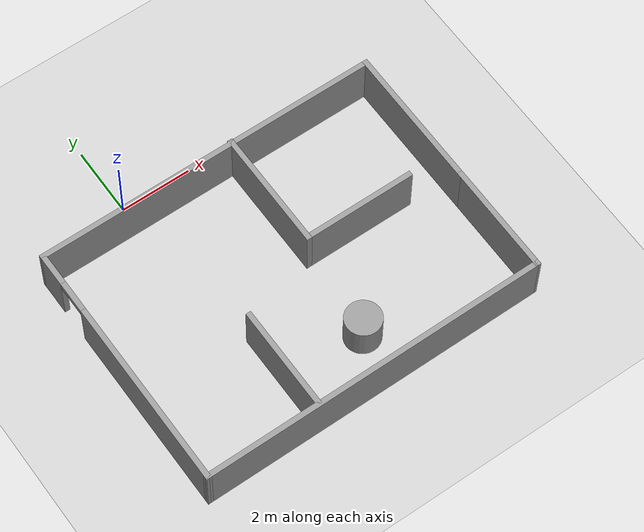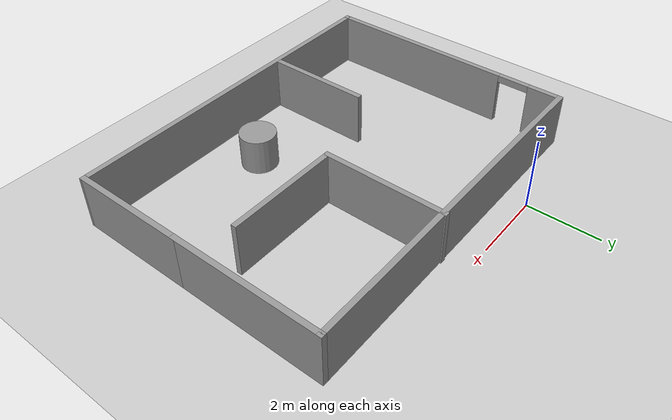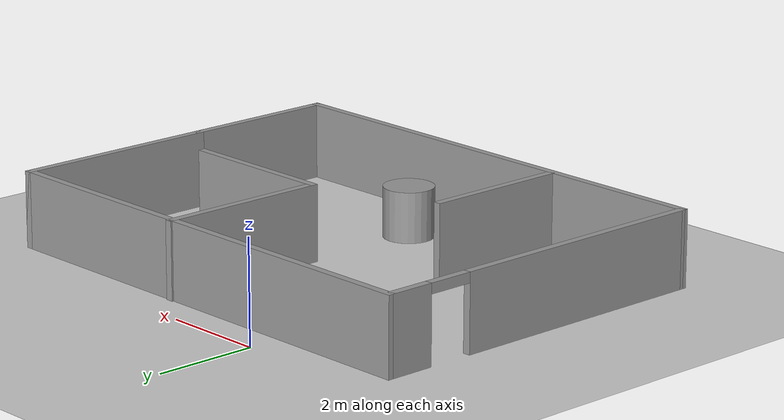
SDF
<sdf version="1.7">
 <world name="default">
  <light name="sun" type="directional">
   <pose>0 0 10 0 -0 0</pose>
   <diffuse>0.8 0.8 0.8 1</diffuse>
   <specular>0.2 0.2 0.2 1</specular>
   <attenuation>
    <range>1000</range>
    <constant>0.9</constant>
    <linear>0.01</linear>
    <quadratic>0.001</quadratic>
   </attenuation>
   <direction>-0.5 0.1 -0.9</direction>
   <spot><inner_angle>0</inner_angle><outer_angle>0</outer_angle><falloff>0</falloff></spot>
  </light>
  <model name="ground_plane">
   <static>1</static>
   <link name="link">
    <collision name="collision">
     <geometry><plane><normal>0 0 1</normal><size>100 100</size></plane></geometry>
     <surface><friction><ode><mu>100</mu><mu2>50</mu2></ode></friction></surface>
    </collision>
    <visual name="visual">
     <cast_shadows>0</cast_shadows>
     <geometry><plane><normal>0 0 1</normal><size>100 100</size></plane></geometry>
     <material>
      <script><uri>file://media/materials/scripts/gazebo.material</uri><name>Gazebo/Grey</name></script>
     </material>
    </visual>
   </link>
  </model>
  <gravity>0 0 -9.8</gravity>
  <magnetic_field>6e-06 2.3e-05 -4.2e-05</magnetic_field>
  <atmosphere type="adiabatic"/>
  <physics type="ode">
   <max_step_size>0.001</max_step_size>
   <real_time_factor>1</real_time_factor>
   <real_time_update_rate>1000</real_time_update_rate>
  </physics>
  <scene><ambient>0.4 0.4 0.4 1</ambient><background>0.7 0.7 0.7 1</background><shadows>1</shadows></scene>
  <audio><device>default</device></audio>
  <spherical_coordinates>
   <surface_model>EARTH_WGS84</surface_model>
   <latitude_deg>0</latitude_deg>
   <longitude_deg>0</longitude_deg>
   <elevation>0</elevation>
   <heading_deg>0</heading_deg>
  </spherical_coordinates>
  <model name="hbot_house">
   <pose>2.185 -3.9926 0 0 -0 0</pose>
   <link name="Wall_0">
    <collision name="Wall_0_Collision">
     <geometry><box><size>10 0.15 1.5</size></box></geometry>
     <pose>0 0 0.75 0 -0 0</pose>
    </collision>
    <visual name="Wall_0_Visual">
     <pose>0 0 0.75 0 -0 0</pose>
     <geometry><box><size>10 0.15 1.5</size></box></geometry>
     <material>
      <script><uri>file://media/materials/scripts/gazebo.material</uri><name>Gazebo/Grey</name></script>
      <ambient>1 1 1 1</ambient>
     </material>
     <meta><layer>0</layer></meta>
    </visual>
    <pose>0 3.2826 0 0 -0 0</pose>
   </link>
   <link name="Wall_1">
    <collision name="Wall_1_Collision">
     <geometry><box><size>4.223 0.15 1.5</size></box></geometry>
     <pose>0 0 0.75 0 -0 0</pose>
    </collision>
    <visual name="Wall_1_Visual">
     <pose>0 0 0.75 0 -0 0</pose>
     <geometry><box><size>4.223 0.15 1.5</size></box></geometry>
     <material>
      <script><uri>file://media/materials/scripts/gazebo.material</uri><name>Gazebo/Grey</name></script>
      <ambient>1 1 1 1</ambient>
     </material>
     <meta><layer>0</layer></meta>
    </visual>
    <pose>4.925 1.2461 0 0 -0 -1.5708</pose>
   </link>
   <link name="Wall_2">
    <collision name="Wall_2_Collision">
     <geometry><box><size>3.25 0.15 1.5</size></box></geometry>
     <pose>0 0 0.75 0 -0 0</pose>
    </collision>
    <visual name="Wall_2_Visual">
     <pose>0 0 0.75 0 -0 0</pose>
     <geometry><box><size>3.25 0.15 1.5</size></box></geometry>
     <material>
      <script><uri>file://media/materials/scripts/gazebo.material</uri><name>Gazebo/Grey</name></script>
      <ambient>1 1 1 1</ambient>
     </material>
     <meta><layer>0</layer></meta>
    </visual>
    <pose>4.925 -2.3404 0 0 -0 -1.5708</pose>
   </link>
   <link name="Wall_3">
    <collision name="Wall_3_Collision">
     <geometry><box><size>10 0.15 1.5</size></box></geometry>
     <pose>0 0 0.75 0 -0 0</pose>
    </collision>
    <visual name="Wall_3_Visual">
     <pose>0 0 0.75 0 -0 0</pose>
     <geometry><box><size>10 0.15 1.5</size></box></geometry>
     <material>
      <script><uri>file://media/materials/scripts/gazebo.material</uri><name>Gazebo/Grey</name></script>
      <ambient>1 1 1 1</ambient>
     </material>
     <meta><layer>0</layer></meta>
    </visual>
    <pose>0 -3.9039 0 0 -0 -3.13885</pose>
   </link>
   <link name="Wall_4">
    <pose>-4.925 -0.367398 0 0 -0 1.5708</pose>
    <visual name="Wall_4_Visual_0">
     <pose>-0.891839 0 0.75 0 -0 0</pose>
     <geometry><box><size>5.46632 0.15 1.5</size></box></geometry>
     <material>
      <script><uri>file://media/materials/scripts/gazebo.material</uri><name>Gazebo/Grey</name></script>
      <ambient>1 1 1 1</ambient>
     </material>
     <meta><layer>0</layer></meta>
    </visual>
    <collision name="Wall_4_Collision_0">
     <geometry><box><size>5.46632 0.15 1.5</size></box></geometry>
     <pose>-0.891839 0 0.75 0 -0 0</pose>
    </collision>
    <visual name="Wall_4_Visual_1">
     <pose>3.18316 0 0.75 0 -0 0</pose>
     <geometry><box><size>0.883679 0.15 1.5</size></box></geometry>
     <material>
      <script><uri>file://media/materials/scripts/gazebo.material</uri><name>Gazebo/Grey</name></script>
      <ambient>1 1 1 1</ambient>
     </material>
     <meta><layer>0</layer></meta>
    </visual>
    <collision name="Wall_4_Collision_1">
     <geometry><box><size>0.883679 0.15 1.5</size></box></geometry>
     <pose>3.18316 0 0.75 0 -0 0</pose>
    </collision>
    <visual name="Wall_4_Visual_2">
     <pose>2.29132 0 1.4 0 -0 0</pose>
     <geometry><box><size>0.9 0.15 0.2</size></box></geometry>
     <material>
      <script><uri>file://media/materials/scripts/gazebo.material</uri><name>Gazebo/Grey</name></script>
      <ambient>1 1 1 1</ambient>
     </material>
     <meta><layer>0</layer></meta>
    </visual>
    <collision name="Wall_4_Collision_2">
     <geometry><box><size>0.9 0.15 0.2</size></box></geometry>
     <pose>2.29132 0 1.4 0 -0 0</pose>
    </collision>
   </link>
   <link name="Wall_6">
    <collision name="Wall_6_Collision">
     <geometry><box><size>3.5 0.15 1.5</size></box></geometry>
     <pose>0 0 0.75 0 -0 0</pose>
    </collision>
    <visual name="Wall_6_Visual">
     <pose>0 0 0.75 0 -0 0</pose>
     <geometry><box><size>3.5 0.15 1.5</size></box></geometry>
     <material>
      <script><uri>file://media/materials/scripts/gazebo.material</uri><name>Gazebo/Grey</name></script>
      <ambient>1 1 1 1</ambient>
     </material>
     <meta><layer>0</layer></meta>
    </visual>
    <pose>0.74 1.6406 0 0 -0 -1.5708</pose>
   </link>
   <link name="Wall_7">
    <collision name="Wall_7_Collision">
     <geometry><box><size>3.24999 0.15 1.5</size></box></geometry>
     <pose>0 0 0.75 0 -0 0</pose>
    </collision>
    <visual name="Wall_7_Visual">
     <pose>0 0 0.75 0 -0 0</pose>
     <geometry><box><size>3.24999 0.15 1.5</size></box></geometry>
     <material>
      <script><uri>file://media/materials/scripts/gazebo.material</uri><name>Gazebo/Grey</name></script>
      <ambient>1 1 1 1</ambient>
     </material>
     <meta><layer>0</layer></meta>
    </visual>
    <pose>2.29 -0.034397 0 0 -0 0</pose>
   </link>
   <link name="Wall_9">
    <collision name="Wall_9_Collision">
     <geometry><box><size>3 0.15 1.5</size></box></geometry>
     <pose>0 0 0.75 0 -0 0</pose>
    </collision>
    <visual name="Wall_9_Visual">
     <pose>0 0 0.75 0 -0 0</pose>
     <geometry><box><size>3 0.15 1.5</size></box></geometry>
     <material>
      <script><uri>file://media/materials/scripts/gazebo.material</uri><name>Gazebo/Grey</name></script>
      <ambient>1 1 1 1</ambient>
     </material>
     <meta><layer>0</layer></meta>
    </visual>
    <pose>-1.681 -2.4154 0 0 -0 1.5708</pose>
   </link>
   <static>1</static>
  </model>
  <model name="unit_cylinder">
   <pose>2.87914 -6.44667 0.499997 3e-06 4e-06 -0</pose>
   <link name="link">
    <inertial>
     <mass>1</mass>
     <inertia><ixx>0.145833</ixx><ixy>0</ixy><ixz>0</ixz><iyy>0.145833</iyy><iyz>0</iyz><izz>0.125</izz></inertia>
    </inertial>
    <collision name="collision">
     <geometry><cylinder><radius>0.5</radius><length>1</length></cylinder></geometry>
    </collision>
    <visual name="visual">
     <geometry><cylinder><radius>0.5</radius><length>1</length></cylinder></geometry>
     <material>
      <script><name>Gazebo/Grey</name><uri>file://media/materials/scripts/gazebo.material</uri></script>
     </material>
    </visual>
   </link>
  </model>
 </world>
</sdf>
